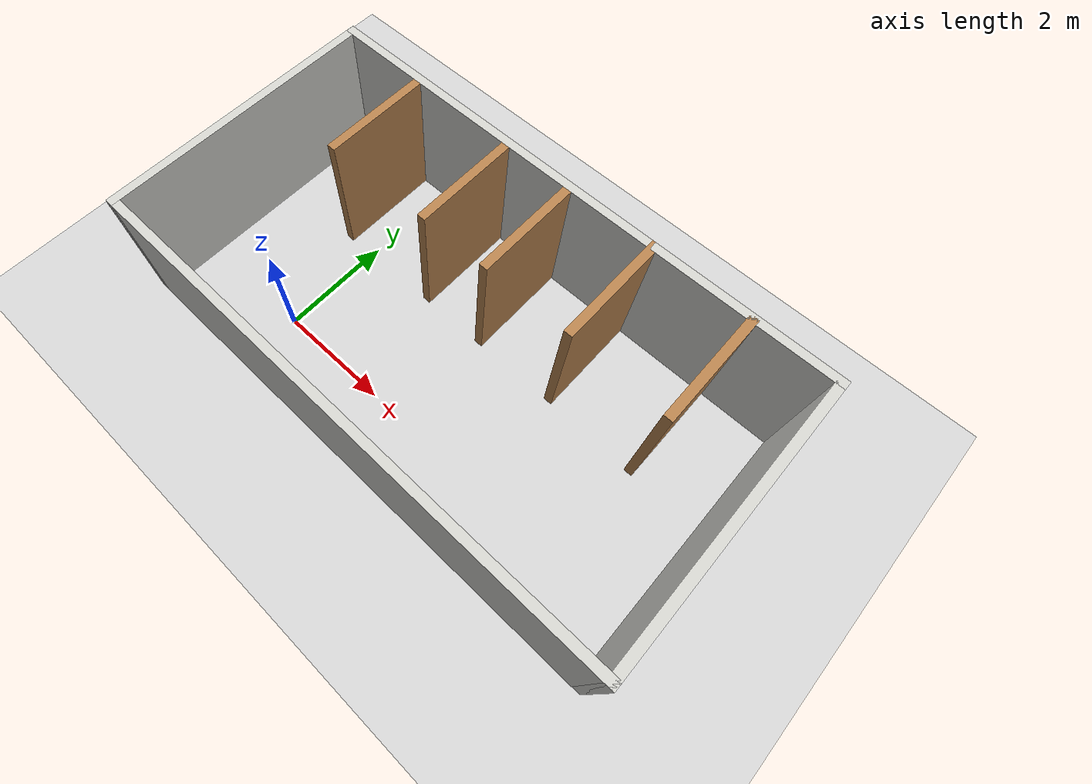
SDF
<sdf version="1.7">
 <world name="default">
  <light name="sun" type="directional">
   <pose>0 0 10 0 -0 0</pose>
   <diffuse>0.8 0.8 0.8 1</diffuse>
   <specular>0.2 0.2 0.2 1</specular>
   <attenuation>
    <range>1000</range>
    <constant>0.9</constant>
    <linear>0.01</linear>
    <quadratic>0.001</quadratic>
   </attenuation>
   <direction>-0.5 0.1 -0.9</direction>
   <spot><inner_angle>0</inner_angle><outer_angle>0</outer_angle><falloff>0</falloff></spot>
  </light>
  <model name="ground_plane">
   <static>1</static>
   <link name="link">
    <collision name="collision">
     <geometry><plane><normal>0 0 1</normal><size>100 100</size></plane></geometry>
     <surface>
      <contact><collide_bitmask>65535</collide_bitmask></contact>
      <friction><ode><mu>100</mu><mu2>50</mu2></ode></friction>
     </surface>
    </collision>
    <visual name="visual">
     <cast_shadows>0</cast_shadows>
     <geometry><plane><normal>0 0 1</normal><size>100 100</size></plane></geometry>
     <material>
      <script><uri>file://media/materials/scripts/gazebo.material</uri><name>Gazebo/Grey</name></script>
     </material>
    </visual>
   </link>
  </model>
  <gravity>0 0 -9.8</gravity>
  <magnetic_field>6e-06 2.3e-05 -4.2e-05</magnetic_field>
  <atmosphere type="adiabatic"/>
  <physics type="ode">
   <max_step_size>0.001</max_step_size>
   <real_time_factor>1</real_time_factor>
   <real_time_update_rate>1000</real_time_update_rate>
  </physics>
  <scene><ambient>0.4 0.4 0.4 1</ambient><background>0.7 0.7 0.7 1</background><shadows>1</shadows></scene>
  <audio><device>default</device></audio>
  <spherical_coordinates>
   <surface_model>EARTH_WGS84</surface_model>
   <latitude_deg>0</latitude_deg>
   <longitude_deg>0</longitude_deg>
   <elevation>0</elevation>
   <heading_deg>0</heading_deg>
  </spherical_coordinates>
  <model name="room">
   <pose>2.50752 1.61314 0 0 -0 0</pose>
   <link name="Wall_0">
    <collision name="Wall_0_Collision">
     <geometry><box><size>5 0.15 2.5</size></box></geometry>
     <pose>0 0 1.25 0 -0 0</pose>
    </collision>
    <visual name="Wall_0_Visual">
     <pose>0 0 1.25 0 -0 0</pose>
     <geometry><box><size>5 0.15 2.5</size></box></geometry>
     <material>
      <script><uri>file://media/materials/scripts/gazebo.material</uri><name>Gazebo/CeilingTiled</name></script>
      <ambient>1 1 1 1</ambient>
     </material>
     <meta><layer>0</layer></meta>
    </visual>
    <pose>-4.675 -0.2325 0 0 -0 -1.5708</pose>
   </link>
   <link name="Wall_10">
    <collision name="Wall_10_Collision">
     <geometry><box><size>2 0.15 2.5</size></box></geometry>
     <pose>0 0 1.25 0 -0 0</pose>
    </collision>
    <visual name="Wall_10_Visual">
     <pose>0 0 1.25 0 -0 0</pose>
     <geometry><box><size>2 0.15 2.5</size></box></geometry>
     <material>
      <script><uri>file://media/materials/scripts/gazebo.material</uri><name>Gazebo/Wood</name></script>
      <ambient>1 1 1 1</ambient>
     </material>
     <meta><layer>0</layer></meta>
    </visual>
    <pose>-1.145 1.2575 0 0 -0 -1.5708</pose>
   </link>
   <link name="Wall_12">
    <collision name="Wall_12_Collision">
     <geometry><box><size>2 0.15 2.5</size></box></geometry>
     <pose>0 0 1.25 0 -0 0</pose>
    </collision>
    <visual name="Wall_12_Visual">
     <pose>0 0 1.25 0 -0 0</pose>
     <geometry><box><size>2 0.15 2.5</size></box></geometry>
     <material>
      <script><uri>file://media/materials/scripts/gazebo.material</uri><name>Gazebo/Wood</name></script>
      <ambient>1 1 1 1</ambient>
     </material>
     <meta><layer>0</layer></meta>
    </visual>
    <pose>0.085 1.2575 0 0 -0 -1.5708</pose>
   </link>
   <link name="Wall_15">
    <collision name="Wall_15_Collision">
     <geometry><box><size>2 0.15 2.5</size></box></geometry>
     <pose>0 0 1.25 0 -0 0</pose>
    </collision>
    <visual name="Wall_15_Visual">
     <pose>0 0 1.25 0 -0 0</pose>
     <geometry><box><size>2 0.15 2.5</size></box></geometry>
     <material>
      <script><uri>file://media/materials/scripts/gazebo.material</uri><name>Gazebo/Wood</name></script>
      <ambient>1 1 1 1</ambient>
     </material>
     <meta><layer>0</layer></meta>
    </visual>
    <pose>1.625 1.2675 0 0 -0 -1.5708</pose>
   </link>
   <link name="Wall_17">
    <collision name="Wall_17_Collision">
     <geometry><box><size>2 0.15 2.5</size></box></geometry>
     <pose>0 0 1.25 0 -0 0</pose>
    </collision>
    <visual name="Wall_17_Visual">
     <pose>0 0 1.25 0 -0 0</pose>
     <geometry><box><size>2 0.15 2.5</size></box></geometry>
     <material>
      <script><uri>file://media/materials/scripts/gazebo.material</uri><name>Gazebo/Wood</name></script>
      <ambient>1 1 1 1</ambient>
     </material>
     <meta><layer>0</layer></meta>
    </visual>
    <pose>3.315 1.2175 0 0 -0 -1.5708</pose>
   </link>
   <link name="Wall_2">
    <collision name="Wall_2_Collision">
     <geometry><box><size>9.5 0.15 2.5</size></box></geometry>
     <pose>0 0 1.25 0 -0 0</pose>
    </collision>
    <visual name="Wall_2_Visual">
     <pose>0 0 1.25 0 -0 0</pose>
     <geometry><box><size>9.5 0.15 2.5</size></box></geometry>
     <material>
      <script><uri>file://media/materials/scripts/gazebo.material</uri><name>Gazebo/CeilingTiled</name></script>
      <ambient>1 1 1 1</ambient>
     </material>
     <meta><layer>0</layer></meta>
    </visual>
    <pose>-0 -2.6575 0 0 -0 0</pose>
   </link>
   <link name="Wall_4">
    <collision name="Wall_4_Collision">
     <geometry><box><size>5 0.15 2.5</size></box></geometry>
     <pose>0 0 1.25 0 -0 0</pose>
    </collision>
    <visual name="Wall_4_Visual">
     <pose>0 0 1.25 0 -0 0</pose>
     <geometry><box><size>5 0.15 2.5</size></box></geometry>
     <material>
      <script><uri>file://media/materials/scripts/gazebo.material</uri><name>Gazebo/CeilingTiled</name></script>
      <ambient>1 1 1 1</ambient>
     </material>
     <meta><layer>0</layer></meta>
    </visual>
    <pose>4.675 -0.2325 0 0 -0 1.5708</pose>
   </link>
   <link name="Wall_6">
    <collision name="Wall_6_Collision">
     <geometry><box><size>9.5 0.15 2.5</size></box></geometry>
     <pose>0 0 1.25 0 -0 0</pose>
    </collision>
    <visual name="Wall_6_Visual">
     <pose>0 0 1.25 0 -0 0</pose>
     <geometry><box><size>9.5 0.15 2.5</size></box></geometry>
     <material>
      <script><uri>file://media/materials/scripts/gazebo.material</uri><name>Gazebo/CeilingTiled</name></script>
      <ambient>1 1 1 1</ambient>
     </material>
     <meta><layer>0</layer></meta>
    </visual>
    <pose>-0 2.1925 0 0 -0 3.14159</pose>
   </link>
   <link name="Wall_8">
    <collision name="Wall_8_Collision">
     <geometry><box><size>2 0.15 2.5</size></box></geometry>
     <pose>0 0 1.25 0 -0 0</pose>
    </collision>
    <visual name="Wall_8_Visual">
     <pose>0 0 1.25 0 -0 0</pose>
     <geometry><box><size>2 0.15 2.5</size></box></geometry>
     <material>
      <script><uri>file://media/materials/scripts/gazebo.material</uri><name>Gazebo/Wood</name></script>
      <ambient>1 1 1 1</ambient>
     </material>
     <meta><layer>0</layer></meta>
    </visual>
    <pose>-3.065 1.2275 0 0 -0 -1.5708</pose>
   </link>
   <static>1</static>
  </model>
 </world>
</sdf>
